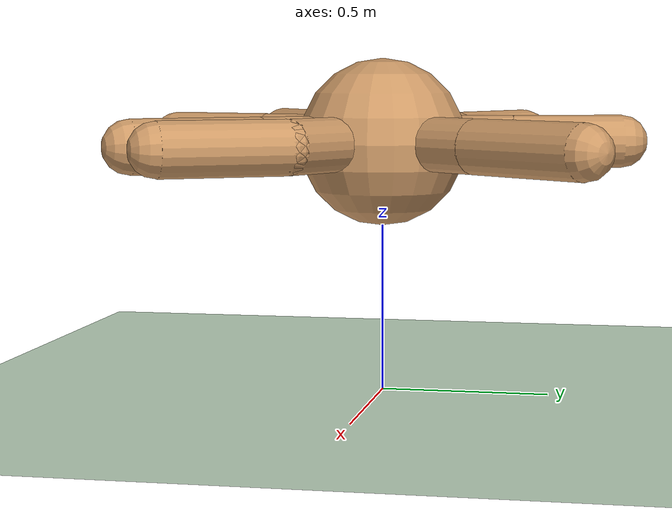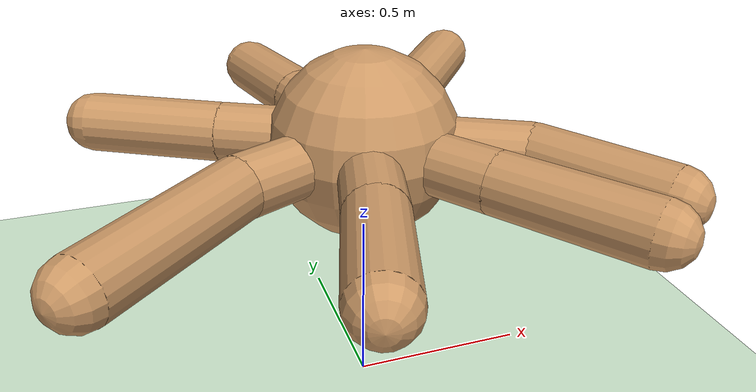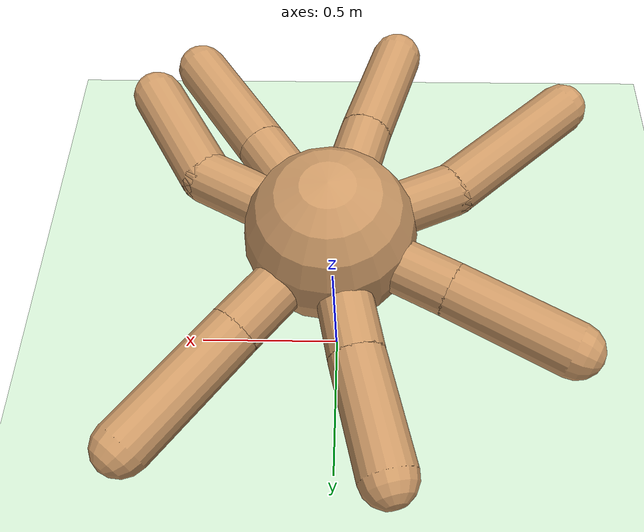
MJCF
<mujoco model="ant">
	<compiler angle="degree" coordinate="local" inertiafromgeom="true"/>
	<option integrator="RK4" timestep="0.002"/>
	<custom>
		<numeric data="0.0 0.0 0.55 1.0 0.0 0.0 0.0 0.0 1.0 0.0 -1.0 0.0 -1.0 0.0 1.0" name="init_qpos"/>
	</custom>
	<default>
		<joint armature="1" damping="1" limited="true"/>
		<geom conaffinity="0" condim="3" density="5.0" friction="1 0.5 0.5" margin="0.01" rgba="0.8 0.6 0.4 1"/>
	</default>
	<asset>
		<texture builtin="gradient" height="100" rgb1="1 1 1" rgb2="0 0 0" type="skybox" width="100"/>
		<texture builtin="flat" height="1278" mark="cross" markrgb="1 1 1" name="texgeom" random="0.01" rgb1="0.8 0.6 0.4" rgb2="0.8 0.6 0.4" type="cube" width="127"/>
		<texture builtin="checker" height="100" name="texplane" rgb1="0 0 0" rgb2="0.8 0.8 0.8" type="2d" width="100"/>
		<material name="MatPlane" reflectance="0.5" shininess="1" specular="1" texrepeat="60 60" texture="texplane"/>
		<material name="geom" texture="texgeom" texuniform="true"/>
	</asset>
	<worldbody>
		<light cutoff="100" diffuse="1 1 1" dir="-0 0 -1.3" directional="true" exponent="1" pos="0 0 1.3" specular=".1 .1 .1"/>
		<geom conaffinity="1" condim="3" material="MatPlane" name="floor" pos="0 0 0" rgba="0.8 0.9 0.8 1" size="40 40 40" type="plane"/>
		<body name="torso" pos="0 0 0.75">
			<geom name="torso_geom" pos="0 0 0" size="0.25" type="sphere"/>

			<joint armature="0" damping="0" limited="false" margin="0.01" name="root" pos="0 0 0" type="free"/>

			<!--다리1-->
			<body name="first_leg" pos="0 0 0">
				<geom fromto="0.0 0.0 0.0 0.125 0.155 0.0" name="aux_1_geom" size="0.08" type="capsule"/>
				<body name="aux_1" pos="0.125 0.155 0">
					<joint axis="0 0 1" name="hip_1" pos="0.0 0.0 0.0" range="-30 30" type="hinge"/>
					<geom fromto="0.0 0.0 0.0 0.125 0.155 0.0" name="first_leg_geom" size="0.08" type="capsule"/>
					<body pos="0.125 0.155 0">
						<joint axis="-1 1 0" name="ankle_1" pos="0.0 0.0 0.0" range="30 70" type="hinge"/>
						<geom fromto="0.0 0.0 0.0 0.25 0.32 0.0" name="first_ankle_geom" size="0.08" type="capsule"/>
					</body>
				</body>
			</body>

			<!--다리2-->
			<body name="second_leg" pos="0 0 0">
				<geom fromto="0.0 0.0 0.0 -0.04 0.19 0.0" name="aux_2_geom" size="0.08" type="capsule"/>
				<body name="aux_2" pos="-0.04 0.19 0">
					<joint axis="0 0 1" name="hip_2" pos="0.0 0.0 0.0" range="-30 30" type="hinge"/>
					<geom fromto="0.0 0.0 0.0 -0.04 0.19 0.0" name="second_ankle_geom" size="0.08" type="capsule"/>
					<body pos="-0.04 0.19 0">
						<joint axis="1 1 0" name="ankle_2" pos="0.0 0.0 0.0" range="-70 -30" type="hinge"/>
						<geom fromto="0.0 0.0 0.0 -0.08 0.32 0.0" name="seocnd_ankle_geom" size="0.08" type="capsule"/>
					</body>
				</body>
			</body>

			<!--다리3-->
			<body name="third_leg" pos="0 0 0">
				<geom fromto="0.0 0.0 0.0 -0.17 0.09 0.0" name="aux_3_geom" size="0.08" type="capsule"/>
				<body name="aux_3" pos="-0.17 0.09 0">
					<joint axis="0 0 1" name="hip_3" pos="0.0 0.0 0.0" range="-30 30" type="hinge"/>
					<geom fromto="0.0 0.0 0.0 -0.17 0.09 0.0" name="third_leg_geom" size="0.08" type="capsule"/>
					<body pos="-0.17 0.09 0">
						<joint axis="1 1 0" name="ankle_3" pos="0.0 0.0 0.0" range="-70 -30" type="hinge"/>
						<geom fromto="0.0 0.0 0.0 -0.32 0.18 0.0" name="third_ankle_geom" size="0.08" type="capsule"/>
					</body>
				</body>
			</body>

			<!--다리4-->
			<body name="fourth_leg" pos="0 0 0">
				<geom fromto="0.0 0.0 0.0 -0.18 -0.08 0.0" name="aux_4_geom" size="0.08" type="capsule"/>
				<body name="aux_4" pos="-0.18 -0.08 0">
					<joint axis="0 0 1" name="hip_4" pos="0.0 0.0 0.0" range="-30 30" type="hinge"/>
					<geom fromto="0.0 0.0 0.0 -0.18 -0.08 0.0" name="fourth_leg_geom" size="0.08" type="capsule"/>
					<body pos="-0.18 -0.08 0">
						<joint axis="-1 1 0" name="ankle_4" pos="0.0 0.0 0.0" range="-70 -30" type="hinge"/>
						<geom fromto="0.0 0.0 0.0 -0.36 -0.32 0.0" name="fourth_ankle_geom" size="0.08" type="capsule"/>
					</body>
				</body>
			</body>

			<!--다리5-->
			<body name="fifth_leg" pos="0 0 0">
				<geom fromto="0.0 0.0 0.0 -0.05 -0.19 0.0" name="aux_5_geom" size="0.08" type="capsule"/>
				<body name="aux_5" pos="-0.05 -0.19 0">
					<joint axis="0 0 1" name="hip_5" pos="0.0 0.0 0.0" range="-30 30" type="hinge"/>
					<geom fromto="0.0 0.0 0.0 -0.05 -0.19 0.0" name="fifth_leg_geom" size="0.08" type="capsule"/>
					<body pos="-0.05 -0.19 0">
						<joint axis="-1 1 0" name="ankle_5" pos="0.0 0.0 0.0" range="-70 -30" type="hinge"/>
						<geom fromto="0.0 0.0 0.0 -0.1 -0.32 0.0" name="fifth_ankle_geom" size="0.08" type="capsule"/>
					</body>
				</body>
			</body>

			<!--다리6-->
			<body name="sixth_leg" pos="0 0 0">
				<geom fromto="0.0 0.0 0.0 0.11 -0.16 0.0" name="aux_6_geom" size="0.08" type="capsule"/>
				<body name="aux_6" pos="0.11 -0.16 0">
					<joint axis="0 0 1" name="hip_6" pos="0.0 0.0 0.0" range="-30 30" type="hinge"/>
					<geom fromto="0.0 0.0 0.0 0.11 -0.16 0.0" name="sixth_leg_geom" size="0.08" type="capsule"/>
					<body pos="0.11 -0.16 0">
						<joint axis="1 1 0" name="ankle_6" pos="0.0 0.0 0.0" range="30 70" type="hinge"/>
						<geom fromto="0.0 0.0 0.0 0.22 -0.32 0.0" name="sixth_ankle_geom" size="0.08" type="capsule"/>
					</body>
				</body>
			</body>

			<!--다리7-->
			<body name="seventh_leg" pos="0 0 0">
				<geom fromto="0.0 0.0 0.0 0.19 -0.1 0.0" name="aux_7_geom" size="0.08" type="capsule"/>
				<body name="aux_7" pos="0.19 -0.1 0">
					<joint axis="0 0 1" name="hip_7" pos="0.0 0.0 0.0" range="-30 30" type="hinge"/>
					<geom fromto="0.0 0.0 0.0 0.19 -0.1 0.0" name="seventh_leg_geom" size="0.08" type="capsule"/>
					<body pos="0.19 -0.1 0">
						<joint axis="1 1 0" name="ankle_7" pos="0.0 0.0 0.0" range="30 70" type="hinge"/>
						<geom fromto="0.0 0.0 0.0 0.19 -0.32 0.0" name="seventh_ankle_geom" size="0.08" type="capsule"/>
					</body>
				</body>
			</body>

		</body>
	</worldbody>

	<actuator>

		<motor ctrllimited="true" ctrlrange="-1.0 1.0" joint="hip_1" gear="150"/>
		<motor ctrllimited="true" ctrlrange="-1.0 1.0" joint="ankle_1" gear="150"/>
		<motor ctrllimited="true" ctrlrange="-1.0 1.0" joint="hip_2" gear="150"/>
		<motor ctrllimited="true" ctrlrange="-1.0 1.0" joint="ankle_2" gear="150"/>
		<motor ctrllimited="true" ctrlrange="-1.0 1.0" joint="hip_3" gear="150"/>
		<motor ctrllimited="true" ctrlrange="-1.0 1.0" joint="ankle_3" gear="150"/>
		<motor ctrllimited="true" ctrlrange="-1.0 1.0" joint="hip_4" gear="150"/>
		<motor ctrllimited="true" ctrlrange="-1.0 1.0" joint="ankle_4" gear="150"/>
		<motor ctrllimited="true" ctrlrange="-1.0 1.0" joint="hip_5" gear="150"/>
		<motor ctrllimited="true" ctrlrange="-1.0 1.0" joint="ankle_5" gear="150"/>
		<motor ctrllimited="true" ctrlrange="-1.0 1.0" joint="hip_6" gear="150"/>
		<motor ctrllimited="true" ctrlrange="-1.0 1.0" joint="ankle_6" gear="150"/>
		<motor ctrllimited="true" ctrlrange="-1.0 1.0" joint="hip_7" gear="150"/>
		<motor ctrllimited="true" ctrlrange="-1.0 1.0" joint="ankle_7" gear="150"/>

	</actuator>
	<sensor>
		<touch name="touch_first_ankle_geom" site="first_ankle_geom"/>
		<touch name="touch_second_ankle_geom" site="second_ankle_geom"/>
		<touch name="touch_third_ankle_geom" site="third_ankle_geom"/>
		<touch name="touch_fourth_ankle_geom" site="fourth_ankle_geom"/>
		<touch name="touch_fifth_ankle_geom" site="fifth_ankle_geom"/>
		<touch name="touch_sixth_ankle_geom" site="sixth_ankle_geom"/>
		<touch name="touch_seventh_ankle_geom" site="seventh_ankle_geom"/>
	</sensor>
</mujoco>
